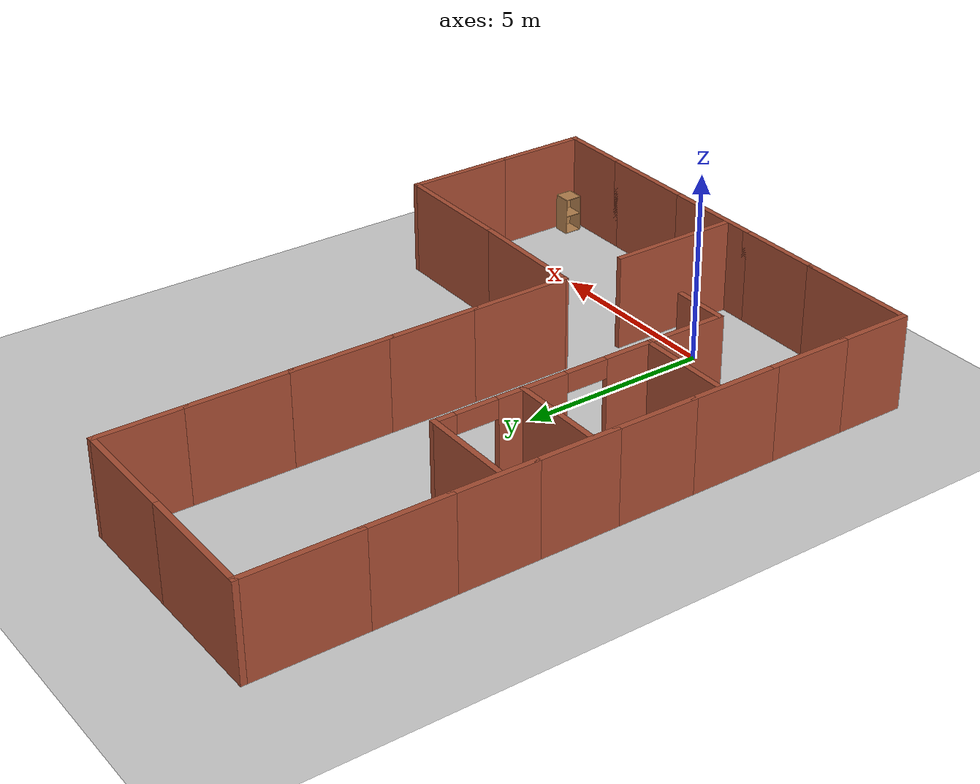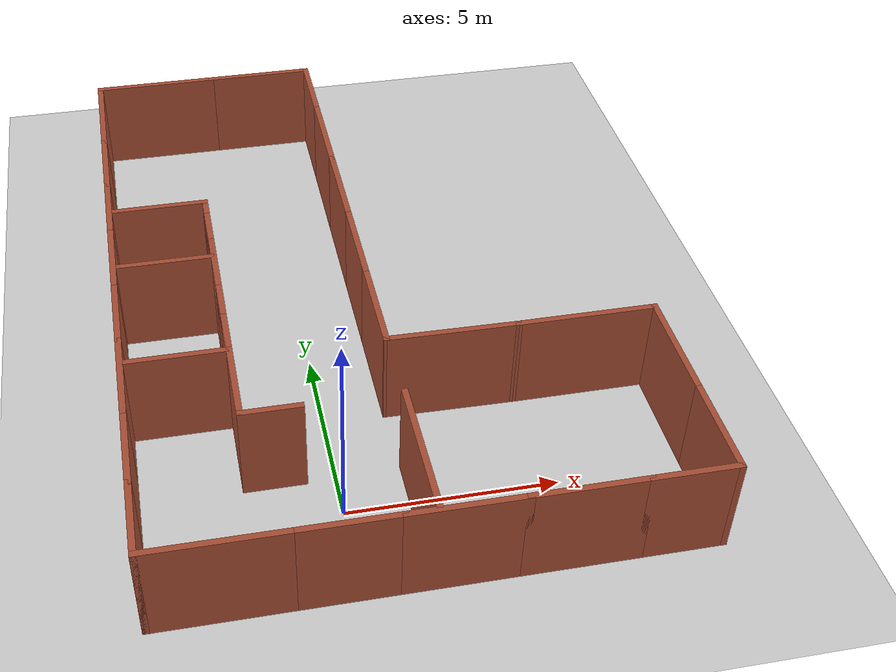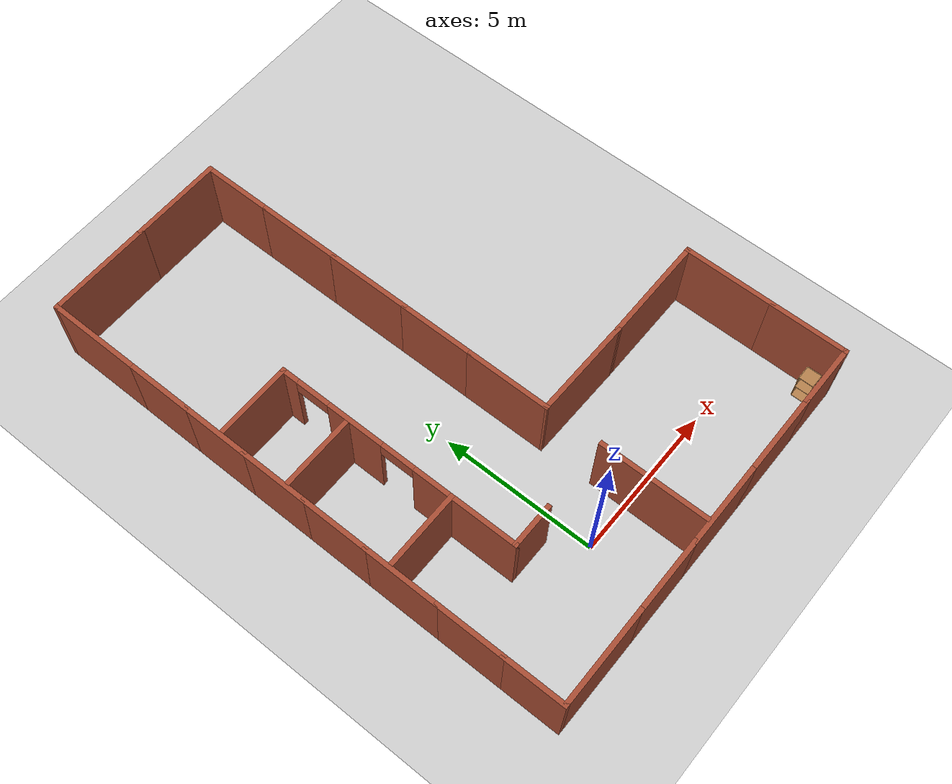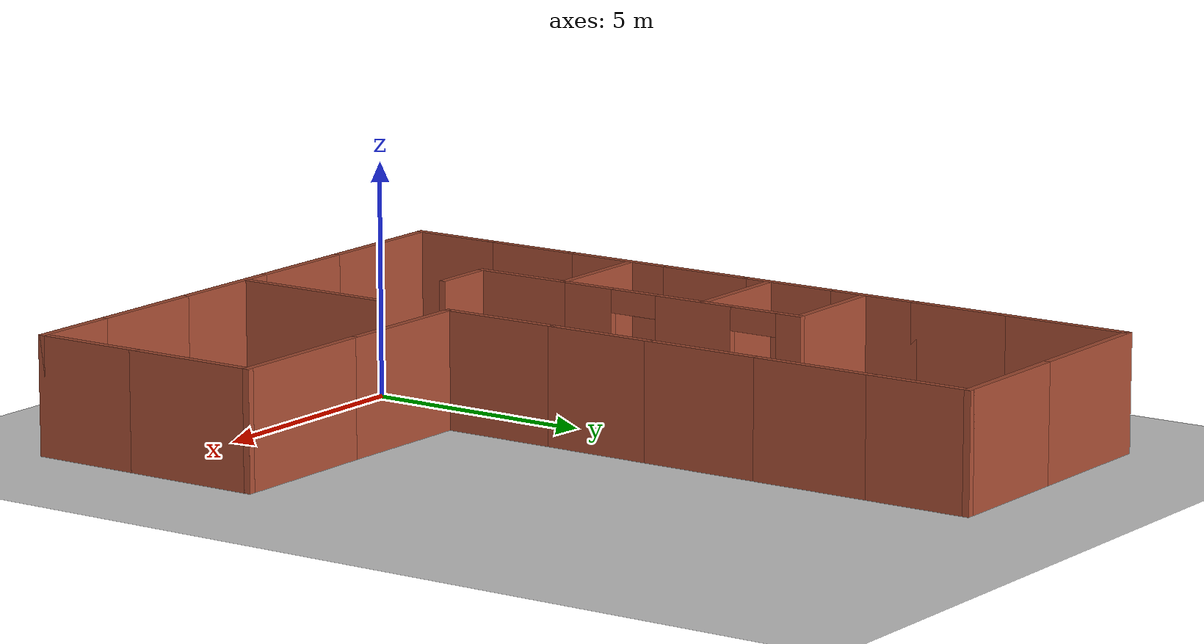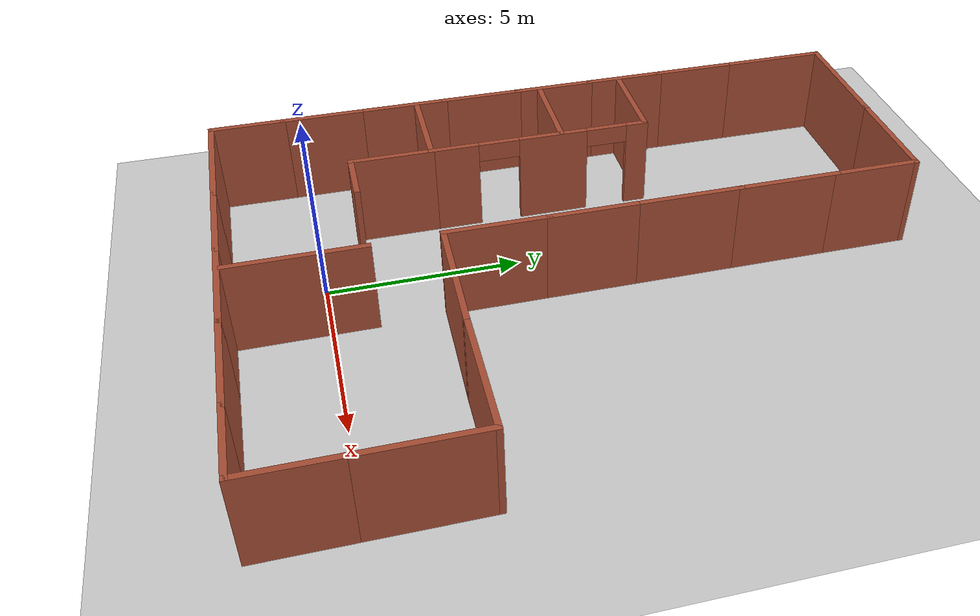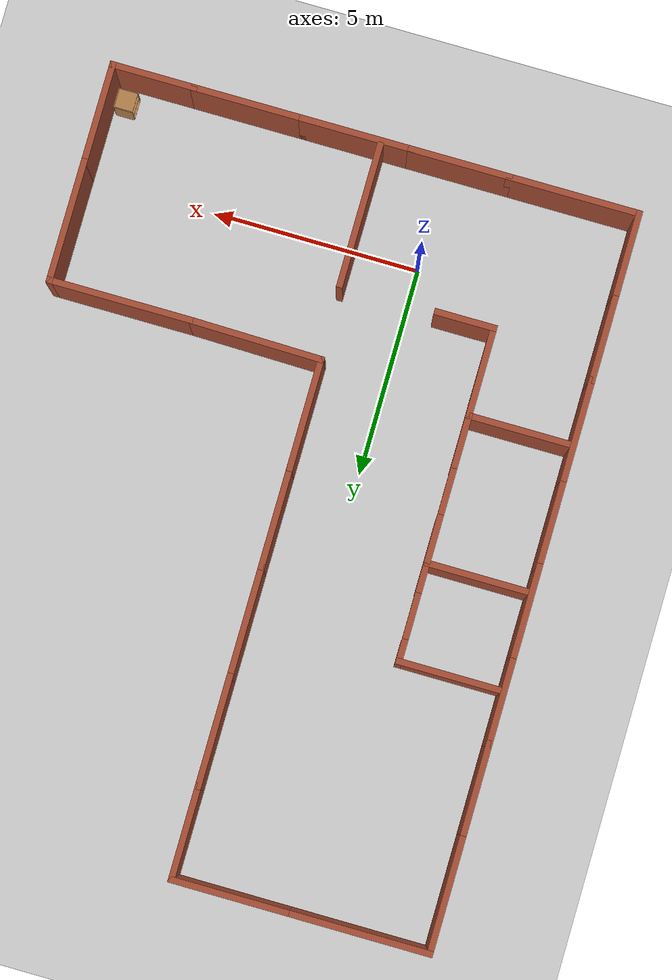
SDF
<sdf version="1.6">
 <world name="default">
  <light name="sun" type="directional">
   <pose>0 0 10 0 -0 0</pose>
   <diffuse>0.8 0.8 0.8 1</diffuse>
   <specular>0.2 0.2 0.2 1</specular>
   <attenuation>
    <range>1000</range>
    <constant>0.9</constant>
    <linear>0.01</linear>
    <quadratic>0.001</quadratic>
   </attenuation>
   <direction>-0.5 0.1 -0.9</direction>
  </light>
  <model name="ground_plane">
   <static>1</static>
   <link name="link">
    <collision name="collision">
     <geometry><plane><normal>0 0 1</normal><size>100 100</size></plane></geometry>
     <surface><friction><ode><mu>100</mu><mu2>50</mu2></ode></friction></surface>
    </collision>
    <visual name="visual">
     <cast_shadows>0</cast_shadows>
     <geometry><plane><normal>0 0 1</normal><size>100 100</size></plane></geometry>
     <material>
      <script><uri>file://media/materials/scripts/gazebo.material</uri><name>Gazebo/Grey</name></script>
     </material>
    </visual>
   </link>
  </model>
  <gravity>0 0 -9.8</gravity>
  <magnetic_field>6e-06 2.3e-05 -4.2e-05</magnetic_field>
  <atmosphere type="adiabatic"/>
  <physics name="default_physics" default="0" type="ode">
   <max_step_size>0.001</max_step_size>
   <real_time_factor>1</real_time_factor>
   <real_time_update_rate>1000</real_time_update_rate>
  </physics>
  <scene><ambient>0.4 0.4 0.4 1</ambient><background>0.7 0.7 0.7 1</background><shadows>1</shadows></scene>
  <spherical_coordinates>
   <surface_model>EARTH_WGS84</surface_model>
   <latitude_deg>0</latitude_deg>
   <longitude_deg>0</longitude_deg>
   <elevation>0</elevation>
   <heading_deg>0</heading_deg>
  </spherical_coordinates>
  <model name="Untitled">
   <pose>1.725 6.43705 0 0 -0 0</pose>
   <link name="Wall_18">
    <collision name="Wall_18_Collision">
     <geometry><box><size>2.5 0.15 2.5</size></box></geometry>
     <pose>0 0 1.25 0 -0 0</pose>
    </collision>
    <visual name="Wall_18_Visual">
     <pose>0 0 1.25 0 -0 0</pose>
     <geometry><box><size>2.5 0.15 2.5</size></box></geometry>
     <material>
      <script><uri>file://media/materials/scripts/gazebo.material</uri><name>Gazebo/Bricks</name></script>
      <ambient>1 1 1 1</ambient>
     </material>
     <meta><layer>0</layer></meta>
    </visual>
    <pose>-4.98575 2.61378 0 0 -0 0</pose>
   </link>
   <link name="Wall_19">
    <pose>-3.81075 -0.311218 0 0 -0 -1.5708</pose>
    <visual name="Wall_19_Visual_0">
     <pose>-2.69813 0 1.25 0 -0 0</pose>
     <geometry><box><size>0.603739 0.15 2.5</size></box></geometry>
     <material>
      <script><uri>file://media/materials/scripts/gazebo.material</uri><name>Gazebo/Bricks</name></script>
      <ambient>1 1 1 1</ambient>
     </material>
     <meta><layer>0</layer></meta>
    </visual>
    <collision name="Wall_19_Collision_0">
     <geometry><box><size>0.603739 0.15 2.5</size></box></geometry>
     <pose>-2.69813 0 1.25 0 -0 0</pose>
    </collision>
    <visual name="Wall_19_Visual_1">
     <pose>-0.363536 0 1.25 0 -0 0</pose>
     <geometry><box><size>1.86545 0.15 2.5</size></box></geometry>
     <material>
      <script><uri>file://media/materials/scripts/gazebo.material</uri><name>Gazebo/Bricks</name></script>
      <ambient>1 1 1 1</ambient>
     </material>
     <meta><layer>0</layer></meta>
    </visual>
    <collision name="Wall_19_Collision_1">
     <geometry><box><size>1.86545 0.15 2.5</size></box></geometry>
     <pose>-0.363536 0 1.25 0 -0 0</pose>
    </collision>
    <visual name="Wall_19_Visual_2">
     <pose>2.33459 0 1.25 0 -0 0</pose>
     <geometry><box><size>1.33081 0.15 2.5</size></box></geometry>
     <material>
      <script><uri>file://media/materials/scripts/gazebo.material</uri><name>Gazebo/Bricks</name></script>
      <ambient>1 1 1 1</ambient>
     </material>
     <meta><layer>0</layer></meta>
    </visual>
    <collision name="Wall_19_Collision_2">
     <geometry><box><size>1.33081 0.15 2.5</size></box></geometry>
     <pose>2.33459 0 1.25 0 -0 0</pose>
    </collision>
    <visual name="Wall_19_Visual_3">
     <pose>-1.84626 0 2.25 0 -0 0</pose>
     <geometry><box><size>1.1 0.15 0.5</size></box></geometry>
     <material>
      <script><uri>file://media/materials/scripts/gazebo.material</uri><name>Gazebo/Bricks</name></script>
      <ambient>1 1 1 1</ambient>
     </material>
     <meta><layer>0</layer></meta>
    </visual>
    <collision name="Wall_19_Collision_3">
     <geometry><box><size>1.1 0.15 0.5</size></box></geometry>
     <pose>-1.84626 0 2.25 0 -0 0</pose>
    </collision>
    <visual name="Wall_19_Visual_4">
     <pose>1.11919 0 2.25 0 -0 0</pose>
     <geometry><box><size>1.1 0.15 0.5</size></box></geometry>
     <material>
      <script><uri>file://media/materials/scripts/gazebo.material</uri><name>Gazebo/Bricks</name></script>
      <ambient>1 1 1 1</ambient>
     </material>
     <meta><layer>0</layer></meta>
    </visual>
    <collision name="Wall_19_Collision_4">
     <geometry><box><size>1.1 0.15 0.5</size></box></geometry>
     <pose>1.11919 0 2.25 0 -0 0</pose>
    </collision>
   </link>
   <link name="Wall_20">
    <collision name="Wall_20_Collision">
     <geometry><box><size>2.5 0.15 2.5</size></box></geometry>
     <pose>0 0 1.25 0 -0 0</pose>
    </collision>
    <visual name="Wall_20_Visual">
     <pose>0 0 1.25 0 -0 0</pose>
     <geometry><box><size>2.5 0.15 2.5</size></box></geometry>
     <material>
      <script><uri>file://media/materials/scripts/gazebo.material</uri><name>Gazebo/Bricks</name></script>
      <ambient>1 1 1 1</ambient>
     </material>
     <meta><layer>0</layer></meta>
    </visual>
    <pose>-4.98575 -3.23622 0 0 -0 3.14159</pose>
   </link>
   <link name="Wall_22">
    <collision name="Wall_22_Collision">
     <geometry><box><size>2.5 0.15 2.5</size></box></geometry>
     <pose>0 0 1.25 0 -0 0</pose>
    </collision>
    <visual name="Wall_22_Visual">
     <pose>0 0 1.25 0 -0 0</pose>
     <geometry><box><size>2.5 0.15 2.5</size></box></geometry>
     <material>
      <script><uri>file://media/materials/scripts/gazebo.material</uri><name>Gazebo/Bricks</name></script>
      <ambient>1 1 1 1</ambient>
     </material>
     <meta><layer>0</layer></meta>
    </visual>
    <pose>-5.00077 0.278799 0 0 -0 3.14159</pose>
   </link>
   <link name="Wall_24">
    <collision name="Wall_24_Collision">
     <geometry><box><size>2.25 0.15 2.5</size></box></geometry>
     <pose>0 0 1.25 0 -0 0</pose>
    </collision>
    <visual name="Wall_24_Visual">
     <pose>0 0 1.25 0 -0 0</pose>
     <geometry><box><size>2.25 0.15 2.5</size></box></geometry>
     <material>
      <script><uri>file://media/materials/scripts/gazebo.material</uri><name>Gazebo/Bricks</name></script>
      <ambient>1 1 1 1</ambient>
     </material>
     <meta><layer>0</layer></meta>
    </visual>
    <pose>-3.81075 -4.28622 0 0 -0 -1.5708</pose>
   </link>
   <link name="Wall_29">
    <collision name="Wall_29_Collision">
     <geometry><box><size>1.5 0.15 2.5</size></box></geometry>
     <pose>0 0 1.25 0 -0 0</pose>
    </collision>
    <visual name="Wall_29_Visual">
     <pose>0 0 1.25 0 -0 0</pose>
     <geometry><box><size>1.5 0.15 2.5</size></box></geometry>
     <material>
      <script><uri>file://media/materials/scripts/gazebo.material</uri><name>Gazebo/Bricks</name></script>
      <ambient>1 1 1 1</ambient>
     </material>
     <meta><layer>0</layer></meta>
    </visual>
    <pose>-3.13575 -5.33622 0 0 -0 0</pose>
   </link>
   <link name="Wall_31">
    <collision name="Wall_31_Collision">
     <geometry><box><size>3.5 0.15 2.5</size></box></geometry>
     <pose>0 0 1.25 0 -0 0</pose>
    </collision>
    <visual name="Wall_31_Visual">
     <pose>0 0 1.25 0 -0 0</pose>
     <geometry><box><size>3.5 0.15 2.5</size></box></geometry>
     <material>
      <script><uri>file://media/materials/scripts/gazebo.material</uri><name>Gazebo/Bricks</name></script>
      <ambient>1 1 1 1</ambient>
     </material>
     <meta><layer>0</layer></meta>
    </visual>
    <pose>-0.138921 -7.01281 0 0 -0 -1.5708</pose>
   </link>
   <link name="Wall_34">
    <collision name="Wall_34_Collision">
     <geometry><box><size>3 0.15 2.5</size></box></geometry>
     <pose>0 0 1.25 0 -0 0</pose>
    </collision>
    <visual name="Wall_34_Visual">
     <pose>0 0 1.25 0 -0 0</pose>
     <geometry><box><size>3 0.15 2.5</size></box></geometry>
     <material>
      <script><uri>file://media/materials/scripts/gazebo.material</uri><name>Gazebo/Bricks</name></script>
      <ambient>1 1 1 1</ambient>
     </material>
     <meta><layer>0</layer></meta>
    </visual>
    <pose>-6.3 7.375 0 0 -0 -1.5708</pose>
   </link>
   <link name="Wall_35">
    <collision name="Wall_35_Collision">
     <geometry><box><size>2.25 0.15 2.5</size></box></geometry>
     <pose>0 0 1.25 0 -0 0</pose>
    </collision>
    <visual name="Wall_35_Visual">
     <pose>0 0 1.25 0 -0 0</pose>
     <geometry><box><size>2.25 0.15 2.5</size></box></geometry>
     <material>
      <script><uri>file://media/materials/scripts/gazebo.material</uri><name>Gazebo/Bricks</name></script>
      <ambient>1 1 1 1</ambient>
     </material>
     <meta><layer>0</layer></meta>
    </visual>
    <pose>-6.3 4.9 0 0 -0 -1.5708</pose>
   </link>
   <link name="Wall_36">
    <collision name="Wall_36_Collision">
     <geometry><box><size>2.25 0.15 2.5</size></box></geometry>
     <pose>0 0 1.25 0 -0 0</pose>
    </collision>
    <visual name="Wall_36_Visual">
     <pose>0 0 1.25 0 -0 0</pose>
     <geometry><box><size>2.25 0.15 2.5</size></box></geometry>
     <material>
      <script><uri>file://media/materials/scripts/gazebo.material</uri><name>Gazebo/Bricks</name></script>
      <ambient>1 1 1 1</ambient>
     </material>
     <meta><layer>0</layer></meta>
    </visual>
    <pose>-6.3 2.8 0 0 -0 -1.5708</pose>
   </link>
   <link name="Wall_37">
    <collision name="Wall_37_Collision">
     <geometry><box><size>2.25 0.15 2.5</size></box></geometry>
     <pose>0 0 1.25 0 -0 0</pose>
    </collision>
    <visual name="Wall_37_Visual">
     <pose>0 0 1.25 0 -0 0</pose>
     <geometry><box><size>2.25 0.15 2.5</size></box></geometry>
     <material>
      <script><uri>file://media/materials/scripts/gazebo.material</uri><name>Gazebo/Bricks</name></script>
      <ambient>1 1 1 1</ambient>
     </material>
     <meta><layer>0</layer></meta>
    </visual>
    <pose>-6.3 0.7 0 0 -0 -1.5708</pose>
   </link>
   <link name="Wall_38">
    <collision name="Wall_38_Collision">
     <geometry><box><size>2.25 0.15 2.5</size></box></geometry>
     <pose>0 0 1.25 0 -0 0</pose>
    </collision>
    <visual name="Wall_38_Visual">
     <pose>0 0 1.25 0 -0 0</pose>
     <geometry><box><size>2.25 0.15 2.5</size></box></geometry>
     <material>
      <script><uri>file://media/materials/scripts/gazebo.material</uri><name>Gazebo/Bricks</name></script>
      <ambient>1 1 1 1</ambient>
     </material>
     <meta><layer>0</layer></meta>
    </visual>
    <pose>-6.3 -1.4 0 0 -0 -1.5708</pose>
   </link>
   <link name="Wall_39">
    <collision name="Wall_39_Collision">
     <geometry><box><size>2.5 0.15 2.5</size></box></geometry>
     <pose>0 0 1.25 0 -0 0</pose>
    </collision>
    <visual name="Wall_39_Visual">
     <pose>0 0 1.25 0 -0 0</pose>
     <geometry><box><size>2.5 0.15 2.5</size></box></geometry>
     <material>
      <script><uri>file://media/materials/scripts/gazebo.material</uri><name>Gazebo/Bricks</name></script>
      <ambient>1 1 1 1</ambient>
     </material>
     <meta><layer>0</layer></meta>
    </visual>
    <pose>-6.3 -3.625 0 0 -0 -1.5708</pose>
   </link>
   <link name="Wall_40">
    <collision name="Wall_40_Collision">
     <geometry><box><size>2.25 0.15 2.5</size></box></geometry>
     <pose>0 0 1.25 0 -0 0</pose>
    </collision>
    <visual name="Wall_40_Visual">
     <pose>0 0 1.25 0 -0 0</pose>
     <geometry><box><size>2.25 0.15 2.5</size></box></geometry>
     <material>
      <script><uri>file://media/materials/scripts/gazebo.material</uri><name>Gazebo/Bricks</name></script>
      <ambient>1 1 1 1</ambient>
     </material>
     <meta><layer>0</layer></meta>
    </visual>
    <pose>-6.3 -5.85 0 0 -0 -1.5708</pose>
   </link>
   <link name="Wall_41">
    <collision name="Wall_41_Collision">
     <geometry><box><size>2.05 0.15 2.5</size></box></geometry>
     <pose>0 0 1.25 0 -0 0</pose>
    </collision>
    <visual name="Wall_41_Visual">
     <pose>0 0 1.25 0 -0 0</pose>
     <geometry><box><size>2.05 0.15 2.5</size></box></geometry>
     <material>
      <script><uri>file://media/materials/scripts/gazebo.material</uri><name>Gazebo/Bricks</name></script>
      <ambient>1 1 1 1</ambient>
     </material>
     <meta><layer>0</layer></meta>
    </visual>
    <pose>-6.3 -7.85 0 0 -0 -1.5708</pose>
   </link>
   <link name="Wall_43">
    <collision name="Wall_43_Collision">
     <geometry><box><size>3.25 0.15 2.5</size></box></geometry>
     <pose>0 0 1.25 0 -0 0</pose>
    </collision>
    <visual name="Wall_43_Visual">
     <pose>0 0 1.25 0 -0 0</pose>
     <geometry><box><size>3.25 0.15 2.5</size></box></geometry>
     <material>
      <script><uri>file://media/materials/scripts/gazebo.material</uri><name>Gazebo/Bricks</name></script>
      <ambient>1 1 1 1</ambient>
     </material>
     <meta><layer>0</layer></meta>
    </visual>
    <pose>-4.75 -8.8 0 0 -0 0</pose>
   </link>
   <link name="Wall_44">
    <collision name="Wall_44_Collision">
     <geometry><box><size>2.5 0.15 2.5</size></box></geometry>
     <pose>0 0 1.25 0 -0 0</pose>
    </collision>
    <visual name="Wall_44_Visual">
     <pose>0 0 1.25 0 -0 0</pose>
     <geometry><box><size>2.5 0.15 2.5</size></box></geometry>
     <material>
      <script><uri>file://media/materials/scripts/gazebo.material</uri><name>Gazebo/Bricks</name></script>
      <ambient>1 1 1 1</ambient>
     </material>
     <meta><layer>0</layer></meta>
    </visual>
    <pose>-2.025 -8.8 0 0 -0 0</pose>
   </link>
   <link name="Wall_45">
    <collision name="Wall_45_Collision">
     <geometry><box><size>2.75 0.15 2.5</size></box></geometry>
     <pose>0 0 1.25 0 -0 0</pose>
    </collision>
    <visual name="Wall_45_Visual">
     <pose>0 0 1.25 0 -0 0</pose>
     <geometry><box><size>2.75 0.15 2.5</size></box></geometry>
     <material>
      <script><uri>file://media/materials/scripts/gazebo.material</uri><name>Gazebo/Bricks</name></script>
      <ambient>1 1 1 1</ambient>
     </material>
     <meta><layer>0</layer></meta>
    </visual>
    <pose>0.45 -8.8 0 0 -0 0</pose>
   </link>
   <link name="Wall_46">
    <collision name="Wall_46_Collision">
     <geometry><box><size>2.75 0.15 2.5</size></box></geometry>
     <pose>0 0 1.25 0 -0 0</pose>
    </collision>
    <visual name="Wall_46_Visual">
     <pose>0 0 1.25 0 -0 0</pose>
     <geometry><box><size>2.75 0.15 2.5</size></box></geometry>
     <material>
      <script><uri>file://media/materials/scripts/gazebo.material</uri><name>Gazebo/Bricks</name></script>
      <ambient>1 1 1 1</ambient>
     </material>
     <meta><layer>0</layer></meta>
    </visual>
    <pose>3.05 -8.8 0 0 -0 0</pose>
   </link>
   <link name="Wall_47">
    <collision name="Wall_47_Collision">
     <geometry><box><size>2.1 0.15 2.5</size></box></geometry>
     <pose>0 0 1.25 0 -0 0</pose>
    </collision>
    <visual name="Wall_47_Visual">
     <pose>0 0 1.25 0 -0 0</pose>
     <geometry><box><size>2.1 0.15 2.5</size></box></geometry>
     <material>
      <script><uri>file://media/materials/scripts/gazebo.material</uri><name>Gazebo/Bricks</name></script>
      <ambient>1 1 1 1</ambient>
     </material>
     <meta><layer>0</layer></meta>
    </visual>
    <pose>5.325 -8.8 0 0 -0 0</pose>
   </link>
   <link name="Wall_49">
    <collision name="Wall_49_Collision">
     <geometry><box><size>2.5 0.15 2.5</size></box></geometry>
     <pose>0 0 1.25 0 -0 0</pose>
    </collision>
    <visual name="Wall_49_Visual">
     <pose>0 0 1.25 0 -0 0</pose>
     <geometry><box><size>2.5 0.15 2.5</size></box></geometry>
     <material>
      <script><uri>file://media/materials/scripts/gazebo.material</uri><name>Gazebo/Bricks</name></script>
      <ambient>1 1 1 1</ambient>
     </material>
     <meta><layer>0</layer></meta>
    </visual>
    <pose>6.3 -7.625 0 0 -0 1.5708</pose>
   </link>
   <link name="Wall_50">
    <collision name="Wall_50_Collision">
     <geometry><box><size>3 0.15 2.5</size></box></geometry>
     <pose>0 0 1.25 0 -0 0</pose>
    </collision>
    <visual name="Wall_50_Visual">
     <pose>0 0 1.25 0 -0 0</pose>
     <geometry><box><size>3 0.15 2.5</size></box></geometry>
     <material>
      <script><uri>file://media/materials/scripts/gazebo.material</uri><name>Gazebo/Bricks</name></script>
      <ambient>1 1 1 1</ambient>
     </material>
     <meta><layer>0</layer></meta>
    </visual>
    <pose>6.3 -5.025 0 0 -0 1.5708</pose>
   </link>
   <link name="Wall_52">
    <collision name="Wall_52_Collision">
     <geometry><box><size>3.5 0.15 2.5</size></box></geometry>
     <pose>0 0 1.25 0 -0 0</pose>
    </collision>
    <visual name="Wall_52_Visual">
     <pose>0 0 1.25 0 -0 0</pose>
     <geometry><box><size>3.5 0.15 2.5</size></box></geometry>
     <material>
      <script><uri>file://media/materials/scripts/gazebo.material</uri><name>Gazebo/Bricks</name></script>
      <ambient>1 1 1 1</ambient>
     </material>
     <meta><layer>0</layer></meta>
    </visual>
    <pose>4.625 -3.6 0 0 -0 3.14159</pose>
   </link>
   <link name="Wall_53">
    <collision name="Wall_53_Collision">
     <geometry><box><size>3.3004 0.15 2.5</size></box></geometry>
     <pose>0 0 1.25 0 -0 0</pose>
    </collision>
    <visual name="Wall_53_Visual">
     <pose>0 0 1.25 0 -0 0</pose>
     <geometry><box><size>3.3004 0.15 2.5</size></box></geometry>
     <material>
      <script><uri>file://media/materials/scripts/gazebo.material</uri><name>Gazebo/Bricks</name></script>
      <ambient>1 1 1 1</ambient>
     </material>
     <meta><layer>0</layer></meta>
    </visual>
    <pose>1.375 -3.575 0 0 -0 3.12572</pose>
   </link>
   <link name="Wall_55">
    <collision name="Wall_55_Collision">
     <geometry><box><size>2.75 0.15 2.5</size></box></geometry>
     <pose>0 0 1.25 0 -0 0</pose>
    </collision>
    <visual name="Wall_55_Visual">
     <pose>0 0 1.25 0 -0 0</pose>
     <geometry><box><size>2.75 0.15 2.5</size></box></geometry>
     <material>
      <script><uri>file://media/materials/scripts/gazebo.material</uri><name>Gazebo/Bricks</name></script>
      <ambient>1 1 1 1</ambient>
     </material>
     <meta><layer>0</layer></meta>
    </visual>
    <pose>-0.2 -2.25 0 0 -0 1.5708</pose>
   </link>
   <link name="Wall_56">
    <collision name="Wall_56_Collision">
     <geometry><box><size>2.5 0.15 2.5</size></box></geometry>
     <pose>0 0 1.25 0 -0 0</pose>
    </collision>
    <visual name="Wall_56_Visual">
     <pose>0 0 1.25 0 -0 0</pose>
     <geometry><box><size>2.5 0.15 2.5</size></box></geometry>
     <material>
      <script><uri>file://media/materials/scripts/gazebo.material</uri><name>Gazebo/Bricks</name></script>
      <ambient>1 1 1 1</ambient>
     </material>
     <meta><layer>0</layer></meta>
    </visual>
    <pose>-0.2 0.225 0 0 -0 1.5708</pose>
   </link>
   <link name="Wall_57">
    <collision name="Wall_57_Collision">
     <geometry><box><size>2.75 0.15 2.5</size></box></geometry>
     <pose>0 0 1.25 0 -0 0</pose>
    </collision>
    <visual name="Wall_57_Visual">
     <pose>0 0 1.25 0 -0 0</pose>
     <geometry><box><size>2.75 0.15 2.5</size></box></geometry>
     <material>
      <script><uri>file://media/materials/scripts/gazebo.material</uri><name>Gazebo/Bricks</name></script>
      <ambient>1 1 1 1</ambient>
     </material>
     <meta><layer>0</layer></meta>
    </visual>
    <pose>-0.2 2.7 0 0 -0 1.5708</pose>
   </link>
   <link name="Wall_58">
    <collision name="Wall_58_Collision">
     <geometry><box><size>2.75 0.15 2.5</size></box></geometry>
     <pose>0 0 1.25 0 -0 0</pose>
    </collision>
    <visual name="Wall_58_Visual">
     <pose>0 0 1.25 0 -0 0</pose>
     <geometry><box><size>2.75 0.15 2.5</size></box></geometry>
     <material>
      <script><uri>file://media/materials/scripts/gazebo.material</uri><name>Gazebo/Bricks</name></script>
      <ambient>1 1 1 1</ambient>
     </material>
     <meta><layer>0</layer></meta>
    </visual>
    <pose>-0.2 5.3 0 0 -0 1.5708</pose>
   </link>
   <link name="Wall_59">
    <collision name="Wall_59_Collision">
     <geometry><box><size>2.35 0.15 2.5</size></box></geometry>
     <pose>0 0 1.25 0 -0 0</pose>
    </collision>
    <visual name="Wall_59_Visual">
     <pose>0 0 1.25 0 -0 0</pose>
     <geometry><box><size>2.35 0.15 2.5</size></box></geometry>
     <material>
      <script><uri>file://media/materials/scripts/gazebo.material</uri><name>Gazebo/Bricks</name></script>
      <ambient>1 1 1 1</ambient>
     </material>
     <meta><layer>0</layer></meta>
    </visual>
    <pose>-0.2 7.7 0 0 -0 1.5708</pose>
   </link>
   <link name="Wall_61">
    <collision name="Wall_61_Collision">
     <geometry><box><size>3 0.15 2.5</size></box></geometry>
     <pose>0 0 1.25 0 -0 0</pose>
    </collision>
    <visual name="Wall_61_Visual">
     <pose>0 0 1.25 0 -0 0</pose>
     <geometry><box><size>3 0.15 2.5</size></box></geometry>
     <material>
      <script><uri>file://media/materials/scripts/gazebo.material</uri><name>Gazebo/Bricks</name></script>
      <ambient>1 1 1 1</ambient>
     </material>
     <meta><layer>0</layer></meta>
    </visual>
    <pose>-1.625 8.8 0 0 -0 3.14159</pose>
   </link>
   <link name="Wall_62">
    <collision name="Wall_62_Collision">
     <geometry><box><size>3.4 0.15 2.5</size></box></geometry>
     <pose>0 0 1.25 0 -0 0</pose>
    </collision>
    <visual name="Wall_62_Visual">
     <pose>0 0 1.25 0 -0 0</pose>
     <geometry><box><size>3.4 0.15 2.5</size></box></geometry>
     <material>
      <script><uri>file://media/materials/scripts/gazebo.material</uri><name>Gazebo/Bricks</name></script>
      <ambient>1 1 1 1</ambient>
     </material>
     <meta><layer>0</layer></meta>
    </visual>
    <pose>-4.675 8.8 0 0 -0 3.14159</pose>
   </link>
   <static>1</static>
  </model>
  <model name="cabinet">
   <static>1</static>
   <link name="cabinet_bottom_plate">
    <inertial>
     <pose>0 0 -1 0 -0 0</pose>
     <inertia><ixx>2.05</ixx><ixy>0</ixy><ixz>0</ixz><iyy>2.05</iyy><iyz>0</iyz><izz>2.05</izz></inertia>
     <mass>25</mass>
    </inertial>
    <collision name="cabinet_bottom_plate_geom">
     <pose>0 0 0.01 0 -0 0</pose>
     <geometry><box><size>0.45 0.45 0.02</size></box></geometry>
    </collision>
    <visual name="cabinet_bottom_plate_geom_visual">
     <pose>0 0 0.01 0 -0 0</pose>
     <geometry><box><size>0.45 0.45 0.02</size></box></geometry>
     <material>
      <script><uri>file://media/materials/scripts/gazebo.material</uri><name>Gazebo/Wood</name></script>
     </material>
    </visual>
    <collision name="cabinet_bottom_plate_geom_cabinet_back_plate">
     <pose>0.235 0 0.51 0 -0 0</pose>
     <geometry><box><size>0.02 0.45 1.02</size></box></geometry>
    </collision>
    <visual name="cabinet_bottom_plate_geom_cabinet_back_plate_visual">
     <pose>0.235 0 0.51 0 -0 0</pose>
     <geometry><box><size>0.02 0.45 1.02</size></box></geometry>
     <material>
      <script><uri>file://media/materials/scripts/gazebo.material</uri><name>Gazebo/Wood</name></script>
     </material>
    </visual>
    <collision name="cabinet_bottom_plate_geom_cabinet_left_plate">
     <pose>0 0.235 0.51 0 -0 0</pose>
     <geometry><box><size>0.45 0.02 1.02</size></box></geometry>
    </collision>
    <visual name="cabinet_bottom_plate_geom_cabinet_left_plate_visual">
     <pose>0 0.235 0.51 0 -0 0</pose>
     <geometry><box><size>0.45 0.02 1.02</size></box></geometry>
     <material>
      <script><uri>file://media/materials/scripts/gazebo.material</uri><name>Gazebo/Wood</name></script>
     </material>
    </visual>
    <collision name="cabinet_bottom_plate_geom_cabinet_middle_plate">
     <pose>0 0 0.51 0 -0 0</pose>
     <geometry><box><size>0.45 0.45 0.02</size></box></geometry>
    </collision>
    <visual name="cabinet_bottom_plate_geom_cabinet_middle_plate_visual">
     <pose>0 0 0.51 0 -0 0</pose>
     <geometry><box><size>0.45 0.45 0.02</size></box></geometry>
     <material>
      <script><uri>file://media/materials/scripts/gazebo.material</uri><name>Gazebo/Wood</name></script>
     </material>
    </visual>
    <collision name="cabinet_bottom_plate_geom_cabinet_right_plate">
     <pose>0 -0.235 0.51 0 -0 0</pose>
     <geometry><box><size>0.45 0.02 1.02</size></box></geometry>
    </collision>
    <visual name="cabinet_bottom_plate_geom_cabinet_right_plate_visual">
     <pose>0 -0.235 0.51 0 -0 0</pose>
     <geometry><box><size>0.45 0.02 1.02</size></box></geometry>
     <material>
      <script><uri>file://media/materials/scripts/gazebo.material</uri><name>Gazebo/Wood</name></script>
     </material>
    </visual>
    <collision name="cabinet_bottom_plate_geom_cabinet_top_plate">
     <pose>0 0 1.01 0 -0 0</pose>
     <geometry><box><size>0.45 0.45 0.02</size></box></geometry>
    </collision>
    <visual name="cabinet_bottom_plate_geom_cabinet_top_plate_visual">
     <pose>0 0 1.01 0 -0 0</pose>
     <geometry><box><size>0.45 0.45 0.02</size></box></geometry>
     <material>
      <script><uri>file://media/materials/scripts/gazebo.material</uri><name>Gazebo/Wood</name></script>
     </material>
    </visual>
   </link>
   <pose>7.65136 -1.88217 0 0 -0 0</pose>
  </model>
  <audio><device>default</device></audio>
 </world>
</sdf>
